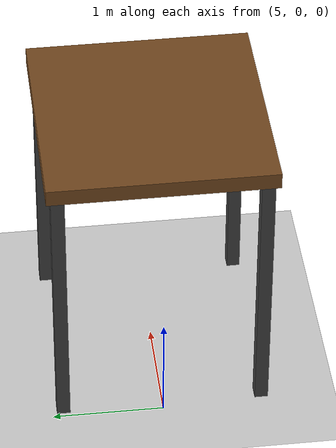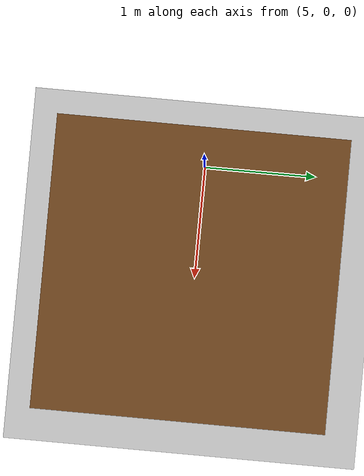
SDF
<?xml version="1.0" encoding="UTF-8"?>

<sdf version="1.9">
  <world name="default">
    <physics type="ode">
      <max_step_size>0.004</max_step_size>
      <real_time_factor>1.0</real_time_factor>
      <real_time_update_rate>250</real_time_update_rate>
    </physics>
    <gravity>0 0 -9.8</gravity>
    <magnetic_field>6e-06 2.3e-05 -4.2e-05</magnetic_field>
    <atmosphere type="adiabatic"/>
    <scene>
      <grid>false</grid>
      <ambient>0.4 0.4 0.4 1</ambient>
      <background>0.7 0.7 0.7 1</background>
      <shadows>false</shadows>
    </scene>
    <model name="ground_plane">
      <static>true</static>
      <link name="link">
        <collision name="collision">
          <geometry>
            <plane>
              <normal>0 0 1</normal>
              <size>1 1</size>
            </plane>
          </geometry>
          <surface>
            <friction>
              <ode/>
            </friction>
            <bounce/>
            <contact/>
          </surface>
        </collision>
        <visual name="visual">
          <geometry>
            <plane>
              <normal>0 0 1</normal>
              <size>500 500</size>
            </plane>
          </geometry>
          <material>
            <ambient>0.8 0.8 0.8 1</ambient>
            <diffuse>0.8 0.8 0.8 1</diffuse>
            <specular>0.8 0.8 0.8 1</specular>
          </material>
        </visual>
        <pose>0 0 0 0 -0 0</pose>
        <inertial>
          <pose>0 0 0 0 -0 0</pose>
          <mass>1</mass>
          <inertia>
            <ixx>1</ixx>
            <ixy>0</ixy>
            <ixz>0</ixz>
            <iyy>1</iyy>
            <iyz>0</iyz>
            <izz>1</izz>
          </inertia>
        </inertial>
        <enable_wind>false</enable_wind>
      </link>
      <pose>0 0 0 0 -0 0</pose>
      <self_collide>false</self_collide>
    </model>
    <model name="occlusion_table">
      <static>true</static>
      <pose>6 0 0 0 0 0</pose>
      <link name="top">
        <pose>0 0 2.575 0 0 0</pose>
        <collision name="collision">
          <geometry><box><size>2 2 0.15</size></box></geometry>
        </collision>
        <visual name="visual">
          <geometry><box><size>2 2 0.15</size></box></geometry>
          <material>
            <ambient>0.45 0.28 0.12 1</ambient>
            <diffuse>0.45 0.28 0.12 1</diffuse>
          </material>
          <cast_shadows>false</cast_shadows>
        </visual>
      </link>
      <link name="front_left">
        <pose>0.9 0.9 1.25 0 0 0</pose>
        <collision name="collision">
          <geometry><box><size>0.12 0.12 2.5</size></box></geometry>
        </collision>
        <visual name="visual">
          <geometry><box><size>0.12 0.12 2.5</size></box></geometry>
          <material>
            <ambient>0.25 0.25 0.25 1</ambient>
            <diffuse>0.25 0.25 0.25 1</diffuse>
          </material>
          <cast_shadows>false</cast_shadows>
        </visual>
      </link>
      <link name="front_right">
        <pose>0.9 -0.9 1.25 0 0 0</pose>
        <collision name="collision">
          <geometry><box><size>0.12 0.12 2.5</size></box></geometry>
        </collision>
        <visual name="visual">
          <geometry><box><size>0.12 0.12 2.5</size></box></geometry>
          <material>
            <ambient>0.25 0.25 0.25 1</ambient>
            <diffuse>0.25 0.25 0.25 1</diffuse>
          </material>
          <cast_shadows>false</cast_shadows>
        </visual>
      </link>
      <link name="back_left">
        <pose>-0.9 0.9 1.25 0 0 0</pose>
        <collision name="collision">
          <geometry><box><size>0.12 0.12 2.5</size></box></geometry>
        </collision>
        <visual name="visual">
          <geometry><box><size>0.12 0.12 2.5</size></box></geometry>
          <material>
            <ambient>0.25 0.25 0.25 1</ambient>
            <diffuse>0.25 0.25 0.25 1</diffuse>
          </material>
          <cast_shadows>false</cast_shadows>
        </visual>
      </link>
      <link name="back_right">
        <pose>-0.9 -0.9 1.25 0 0 0</pose>
        <collision name="collision">
          <geometry><box><size>0.12 0.12 2.5</size></box></geometry>
        </collision>
        <visual name="visual">
          <geometry><box><size>0.12 0.12 2.5</size></box></geometry>
          <material>
            <ambient>0.25 0.25 0.25 1</ambient>
            <diffuse>0.25 0.25 0.25 1</diffuse>
          </material>
          <cast_shadows>false</cast_shadows>
        </visual>
      </link>
    </model>
    <light name="sunUTC" type="directional">
      <pose>0 0 500 0 -0 0</pose>
      <cast_shadows>false</cast_shadows>
      <intensity>1</intensity>
      <direction>0.001 0.625 -0.78</direction>
      <diffuse>0.904 0.904 0.904 1</diffuse>
      <specular>0.271 0.271 0.271 1</specular>
      <attenuation>
        <range>2000</range>
        <linear>0</linear>
        <constant>1</constant>
        <quadratic>0</quadratic>
      </attenuation>
      <spot>
        <inner_angle>0</inner_angle>
        <outer_angle>0</outer_angle>
        <falloff>0</falloff>
      </spot>
    </light>
    <spherical_coordinates>
      <surface_model>EARTH_WGS84</surface_model>
      <world_frame_orientation>ENU</world_frame_orientation>
      <latitude_deg>47.397971057728974</latitude_deg>
      <longitude_deg> 8.546163739800146</longitude_deg>
      <elevation>0</elevation>
    </spherical_coordinates>
  </world>
</sdf>
